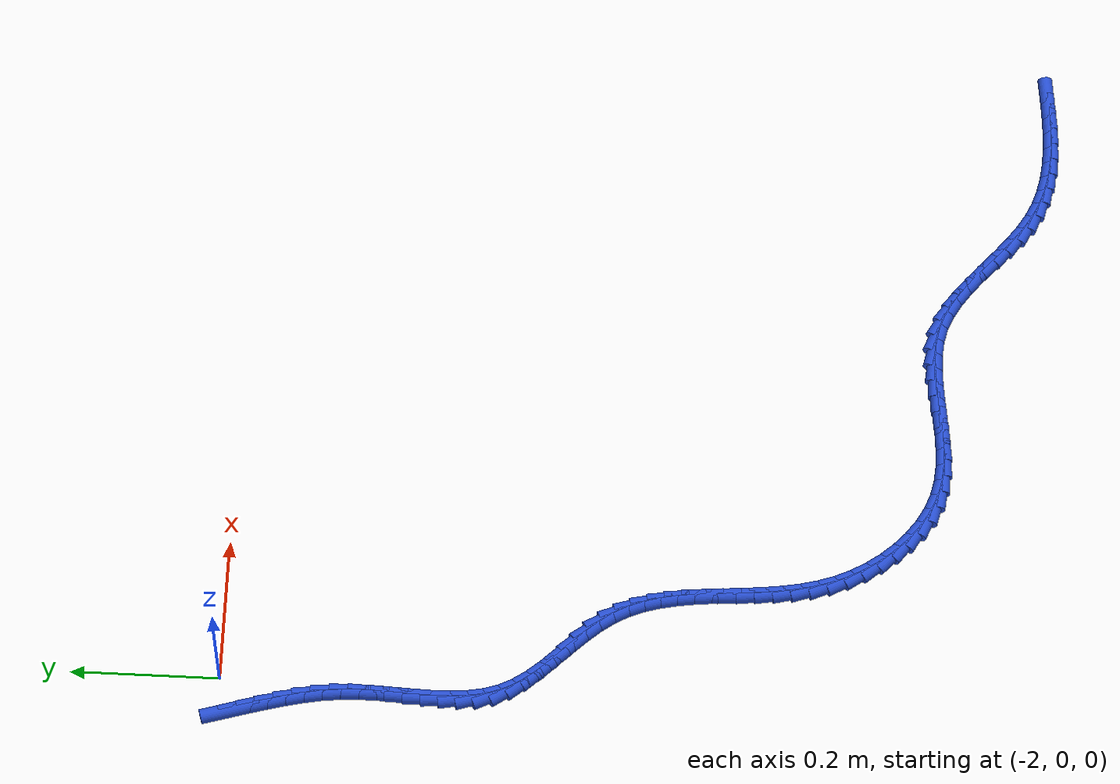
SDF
<sdf version="1.6">
 <world name="default">
  <model name="ground_plane">
   <static>1</static>
   <link name="link">
    <collision name="collision">
     <geometry><plane><normal>0 0 1</normal><size>100 100</size></plane></geometry>
     <surface><friction><ode><mu>100</mu><mu2>50</mu2></ode></friction></surface>
    </collision>
    <visual name="visual">
     <cast_shadows>0</cast_shadows>
     <geometry><plane><normal>0 0 1</normal><size>100 100</size></plane></geometry>
     <material>
      <script><uri>file://media/materials/scripts/gazebo.material</uri><name>Gazebo/WhiteGlow</name></script>
     </material>
    </visual>
   </link>
  </model>
  <model name="line">
   <link name="link_145">
    <pose>-2.0483830246148202 -0.017261488667078405 0.01 0 1.57 -1.2794194189198405</pose>
    <collision name="collision">
     <geometry><cylinder><radius>0.01</radius><length>0.08</length></cylinder></geometry>
    </collision>
    <visual name="visual">
     <material>
      <script><name>Gazebo/Blue</name><uri>file://media/materials/scripts/gazebo.material</uri></script>
     </material>
     <geometry><cylinder><radius>0.01</radius><length>0.08</length></cylinder></geometry>
    </visual>
   </link>
   <link name="link_146">
    <pose>-2.041304434966659 -0.04086363796386494 0.01 0 1.57 -1.2872877401476657</pose>
    <collision name="collision">
     <geometry><cylinder><radius>0.01</radius><length>0.08</length></cylinder></geometry>
    </collision>
    <visual name="visual">
     <material>
      <script><name>Gazebo/Blue</name><uri>file://media/materials/scripts/gazebo.material</uri></script>
     </material>
     <geometry><cylinder><radius>0.01</radius><length>0.08</length></cylinder></geometry>
    </visual>
   </link>
   <link name="link_147">
    <pose>-2.0343598893292323 -0.06469882463232929 0.01 0 1.57 -1.3083641450398615</pose>
    <collision name="collision">
     <geometry><cylinder><radius>0.01</radius><length>0.08</length></cylinder></geometry>
    </collision>
    <visual name="visual">
     <material>
      <script><name>Gazebo/Blue</name><uri>file://media/materials/scripts/gazebo.material</uri></script>
     </material>
     <geometry><cylinder><radius>0.01</radius><length>0.08</length></cylinder></geometry>
    </visual>
   </link>
   <link name="link_148">
    <pose>-2.027897480770272 -0.0887559585432331 0.01 0 1.57 -1.3427508767877594</pose>
    <collision name="collision">
     <geometry><cylinder><radius>0.01</radius><length>0.08</length></cylinder></geometry>
    </collision>
    <visual name="visual">
     <material>
      <script><name>Gazebo/Blue</name><uri>file://media/materials/scripts/gazebo.material</uri></script>
     </material>
     <geometry><cylinder><radius>0.01</radius><length>0.08</length></cylinder></geometry>
    </visual>
   </link>
   <link name="link_149">
    <pose>-2.0222653023575075 -0.11302394956733802 0.01 0 1.57 -1.3907382215481678</pose>
    <collision name="collision">
     <geometry><cylinder><radius>0.01</radius><length>0.08</length></cylinder></geometry>
    </collision>
    <visual name="visual">
     <material>
      <script><name>Gazebo/Blue</name><uri>file://media/materials/scripts/gazebo.material</uri></script>
     </material>
     <geometry><cylinder><radius>0.01</radius><length>0.08</length></cylinder></geometry>
    </visual>
   </link>
   <link name="link_150">
    <pose>-2.0178114471586692 -0.13749170757540569 0.01 0 1.57 -1.4526203434885763</pose>
    <collision name="collision">
     <geometry><cylinder><radius>0.01</radius><length>0.08</length></cylinder></geometry>
    </collision>
    <visual name="visual">
     <material>
      <script><name>Gazebo/Blue</name><uri>file://media/materials/scripts/gazebo.material</uri></script>
     </material>
     <geometry><cylinder><radius>0.01</radius><length>0.08</length></cylinder></geometry>
    </visual>
   </link>
   <link name="link_151">
    <pose>-2.014884008241487 -0.1621481424381977 0.01 0 1.57 -1.5223571945962018</pose>
    <collision name="collision">
     <geometry><cylinder><radius>0.01</radius><length>0.08</length></cylinder></geometry>
    </collision>
    <visual name="visual">
     <material>
      <script><name>Gazebo/Blue</name><uri>file://media/materials/scripts/gazebo.material</uri></script>
     </material>
     <geometry><cylinder><radius>0.01</radius><length>0.08</length></cylinder></geometry>
    </visual>
   </link>
   <link name="link_152">
    <pose>-2.0136812350703406 -0.1869593283669763 0.01 0 1.57 1.566384564438027</pose>
    <collision name="collision">
     <geometry><cylinder><radius>0.01</radius><length>0.08</length></cylinder></geometry>
    </collision>
    <visual name="visual">
     <material>
      <script><name>Gazebo/Blue</name><uri>file://media/materials/scripts/gazebo.material</uri></script>
     </material>
     <geometry><cylinder><radius>0.01</radius><length>0.08</length></cylinder></geometry>
    </visual>
   </link>
   <link name="link_153">
    <pose>-2.0137908193888605 -0.2117982926367096 0.01 0 1.57 1.536251741146123</pose>
    <collision name="collision">
     <geometry><cylinder><radius>0.01</radius><length>0.08</length></cylinder></geometry>
    </collision>
    <visual name="visual">
     <material>
      <script><name>Gazebo/Blue</name><uri>file://media/materials/scripts/gazebo.material</uri></script>
     </material>
     <geometry><cylinder><radius>0.01</radius><length>0.08</length></cylinder></geometry>
    </visual>
   </link>
   <link name="link_154">
    <pose>-2.014644965715542 -0.23651436679394935 0.01 0 1.57 1.5286442754670213</pose>
    <collision name="collision">
     <geometry><cylinder><radius>0.01</radius><length>0.08</length></cylinder></geometry>
    </collision>
    <visual name="visual">
     <material>
      <script><name>Gazebo/Blue</name><uri>file://media/materials/scripts/gazebo.material</uri></script>
     </material>
     <geometry><cylinder><radius>0.01</radius><length>0.08</length></cylinder></geometry>
    </visual>
   </link>
   <link name="link_155">
    <pose>-2.015675878533164 -0.2609568823798051 0.01 0 1.57 1.5441611040547807</pose>
    <collision name="collision">
     <geometry><cylinder><radius>0.01</radius><length>0.08</length></cylinder></geometry>
    </collision>
    <visual name="visual">
     <material>
      <script><name>Gazebo/Blue</name><uri>file://media/materials/scripts/gazebo.material</uri></script>
     </material>
     <geometry><cylinder><radius>0.01</radius><length>0.08</length></cylinder></geometry>
    </visual>
   </link>
   <link name="link_156">
    <pose>-2.016315762324507 -0.28497517093538643 0.01 0 1.57 -1.5571924480375676</pose>
    <collision name="collision">
     <geometry><cylinder><radius>0.01</radius><length>0.08</length></cylinder></geometry>
    </collision>
    <visual name="visual">
     <material>
      <script><name>Gazebo/Blue</name><uri>file://media/materials/scripts/gazebo.material</uri></script>
     </material>
     <geometry><cylinder><radius>0.01</radius><length>0.08</length></cylinder></geometry>
    </visual>
   </link>
   <link name="link_157">
    <pose>-2.01599682157235 -0.3084185640018028 0.01 0 1.57 -1.4897359065318712</pose>
    <collision name="collision">
     <geometry><cylinder><radius>0.01</radius><length>0.08</length></cylinder></geometry>
    </collision>
    <visual name="visual">
     <material>
      <script><name>Gazebo/Blue</name><uri>file://media/materials/scripts/gazebo.material</uri></script>
     </material>
     <geometry><cylinder><radius>0.01</radius><length>0.08</length></cylinder></geometry>
    </visual>
   </link>
   <link name="link_158">
    <pose>-2.0141512607594736 -0.33113639312016396 0.01 0 1.57 -1.3923269502467228</pose>
    <collision name="collision">
     <geometry><cylinder><radius>0.01</radius><length>0.08</length></cylinder></geometry>
    </collision>
    <visual name="visual">
     <material>
      <script><name>Gazebo/Blue</name><uri>file://media/materials/scripts/gazebo.material</uri></script>
     </material>
     <geometry><cylinder><radius>0.01</radius><length>0.08</length></cylinder></geometry>
    </visual>
   </link>
   <link name="link_159">
    <pose>-2.010211284368657 -0.35297798983157946 0.01 0 1.57 -1.2636455716927029</pose>
    <collision name="collision">
     <geometry><cylinder><radius>0.01</radius><length>0.08</length></cylinder></geometry>
    </collision>
    <visual name="visual">
     <material>
      <script><name>Gazebo/Blue</name><uri>file://media/materials/scripts/gazebo.material</uri></script>
     </material>
     <geometry><cylinder><radius>0.01</radius><length>0.08</length></cylinder></geometry>
    </visual>
   </link>
   <link name="link_160">
    <pose>-2.0036090968826796 -0.37379268567715873 0.01 0 1.57 -1.108068161740013</pose>
    <collision name="collision">
     <geometry><cylinder><radius>0.01</radius><length>0.08</length></cylinder></geometry>
    </collision>
    <visual name="visual">
     <material>
      <script><name>Gazebo/Blue</name><uri>file://media/materials/scripts/gazebo.material</uri></script>
     </material>
     <geometry><cylinder><radius>0.01</radius><length>0.08</length></cylinder></geometry>
    </visual>
   </link>
   <link name="link_161">
    <pose>-1.9938079625598664 -0.39344009531280705 0.01 0 1.57 -0.9652617583247524</pose>
    <collision name="collision">
     <geometry><cylinder><radius>0.01</radius><length>0.08</length></cylinder></geometry>
    </collision>
    <visual name="visual">
     <material>
      <script><name>Gazebo/Blue</name><uri>file://media/materials/scripts/gazebo.material</uri></script>
     </material>
     <geometry><cylinder><radius>0.01</radius><length>0.08</length></cylinder></geometry>
    </visual>
   </link>
   <link name="link_162">
    <pose>-1.9809548004513957 -0.412006174396328 0.01 0 1.57 -0.8673325138743191</pose>
    <collision name="collision">
     <geometry><cylinder><radius>0.01</radius><length>0.08</length></cylinder></geometry>
    </collision>
    <visual name="visual">
     <material>
      <script><name>Gazebo/Blue</name><uri>file://media/materials/scripts/gazebo.material</uri></script>
     </material>
     <geometry><cylinder><radius>0.01</radius><length>0.08</length></cylinder></geometry>
    </visual>
   </link>
   <link name="link_163">
    <pose>-1.965863541082562 -0.4297977094008816 0.01 0 1.57 -0.8103854601641428</pose>
    <collision name="collision">
     <geometry><cylinder><radius>0.01</radius><length>0.08</length></cylinder></geometry>
    </collision>
    <visual name="visual">
     <material>
      <script><name>Gazebo/Blue</name><uri>file://media/materials/scripts/gazebo.material</uri></script>
     </material>
     <geometry><cylinder><radius>0.01</radius><length>0.08</length></cylinder></geometry>
    </visual>
   </link>
   <link name="link_164">
    <pose>-1.949375845456619 -0.44713066766726817 0.01 0 1.57 -0.7897179089075105</pose>
    <collision name="collision">
     <geometry><cylinder><radius>0.01</radius><length>0.08</length></cylinder></geometry>
    </collision>
    <visual name="visual">
     <material>
      <script><name>Gazebo/Blue</name><uri>file://media/materials/scripts/gazebo.material</uri></script>
     </material>
     <geometry><cylinder><radius>0.01</radius><length>0.08</length></cylinder></geometry>
    </visual>
   </link>
   <link name="link_165">
    <pose>-1.9323333745768185 -0.46432101653628755 0.01 0 1.57 -0.8032196733111899</pose>
    <collision name="collision">
     <geometry><cylinder><radius>0.01</radius><length>0.08</length></cylinder></geometry>
    </collision>
    <visual name="visual">
     <material>
      <script><name>Gazebo/Blue</name><uri>file://media/materials/scripts/gazebo.material</uri></script>
     </material>
     <geometry><cylinder><radius>0.01</radius><length>0.08</length></cylinder></geometry>
    </visual>
   </link>
   <link name="link_166">
    <pose>-1.9155777894464143 -0.4816847233487398 0.01 0 1.57 -0.851787580436012</pose>
    <collision name="collision">
     <geometry><cylinder><radius>0.01</radius><length>0.08</length></cylinder></geometry>
    </collision>
    <visual name="visual">
     <material>
      <script><name>Gazebo/Blue</name><uri>file://media/materials/scripts/gazebo.material</uri></script>
     </material>
     <geometry><cylinder><radius>0.01</radius><length>0.08</length></cylinder></geometry>
    </visual>
   </link>
   <link name="link_167">
    <pose>-1.8999507510686597 -0.49953775544542484 0.01 0 1.57 -0.9389521941829061</pose>
    <collision name="collision">
     <geometry><cylinder><radius>0.01</radius><length>0.08</length></cylinder></geometry>
    </collision>
    <visual name="visual">
     <material>
      <script><name>Gazebo/Blue</name><uri>file://media/materials/scripts/gazebo.material</uri></script>
     </material>
     <geometry><cylinder><radius>0.01</radius><length>0.08</length></cylinder></geometry>
    </visual>
   </link>
   <link name="link_168">
    <pose>-1.8862939204468079 -0.5181960801671427 0.01 0 1.57 -1.0619204006826954</pose>
    <collision name="collision">
     <geometry><cylinder><radius>0.01</radius><length>0.08</length></cylinder></geometry>
    </collision>
    <visual name="visual">
     <material>
      <script><name>Gazebo/Blue</name><uri>file://media/materials/scripts/gazebo.material</uri></script>
     </material>
     <geometry><cylinder><radius>0.01</radius><length>0.08</length></cylinder></geometry>
    </visual>
   </link>
   <link name="link_169">
    <pose>-1.8752911156371 -0.5379184730961186 0.01 0 1.57 -1.1823713898079344</pose>
    <collision name="collision">
     <geometry><cylinder><radius>0.01</radius><length>0.08</length></cylinder></geometry>
    </collision>
    <visual name="visual">
     <material>
      <script><name>Gazebo/Blue</name><uri>file://media/materials/scripts/gazebo.material</uri></script>
     </material>
     <geometry><cylinder><radius>0.01</radius><length>0.08</length></cylinder></geometry>
    </visual>
   </link>
   <link name="link_170">
    <pose>-1.8668013818734372 -0.5586648671419954 0.01 0 1.57 -1.2837471273298435</pose>
    <collision name="collision">
     <geometry><cylinder><radius>0.01</radius><length>0.08</length></cylinder></geometry>
    </collision>
    <visual name="visual">
     <material>
      <script><name>Gazebo/Blue</name><uri>file://media/materials/scripts/gazebo.material</uri></script>
     </material>
     <geometry><cylinder><radius>0.01</radius><length>0.08</length></cylinder></geometry>
    </visual>
   </link>
   <link name="link_171">
    <pose>-1.86041526402421 -0.580297908586331 0.01 0 1.57 -1.3641540553726468</pose>
    <collision name="collision">
     <geometry><cylinder><radius>0.01</radius><length>0.08</length></cylinder></geometry>
    </collision>
    <visual name="visual">
     <material>
      <script><name>Gazebo/Blue</name><uri>file://media/materials/scripts/gazebo.material</uri></script>
     </material>
     <geometry><cylinder><radius>0.01</radius><length>0.08</length></cylinder></geometry>
    </visual>
   </link>
   <link name="link_172">
    <pose>-1.8557231615749592 -0.6026801910336347 0.01 0 1.57 -1.4236689605660042</pose>
    <collision name="collision">
     <geometry><cylinder><radius>0.01</radius><length>0.08</length></cylinder></geometry>
    </collision>
    <visual name="visual">
     <material>
      <script><name>Gazebo/Blue</name><uri>file://media/materials/scripts/gazebo.material</uri></script>
     </material>
     <geometry><cylinder><radius>0.01</radius><length>0.08</length></cylinder></geometry>
    </visual>
   </link>
   <link name="link_173">
    <pose>-1.8523154740112273 -0.6256743080884156 0.01 0 1.57 -1.4632861699599455</pose>
    <collision name="collision">
     <geometry><cylinder><radius>0.01</radius><length>0.08</length></cylinder></geometry>
    </collision>
    <visual name="visual">
     <material>
      <script><name>Gazebo/Blue</name><uri>file://media/materials/scripts/gazebo.material</uri></script>
     </material>
     <geometry><cylinder><radius>0.01</radius><length>0.08</length></cylinder></geometry>
    </visual>
   </link>
   <link name="link_174">
    <pose>-1.8497826008185565 -0.6491428533551833 0.01 0 1.57 -1.484157631199444</pose>
    <collision name="collision">
     <geometry><cylinder><radius>0.01</radius><length>0.08</length></cylinder></geometry>
    </collision>
    <visual name="visual">
     <material>
      <script><name>Gazebo/Blue</name><uri>file://media/materials/scripts/gazebo.material</uri></script>
     </material>
     <geometry><cylinder><radius>0.01</radius><length>0.08</length></cylinder></geometry>
    </visual>
   </link>
   <link name="link_175">
    <pose>-1.8477149414824878 -0.6729484204384467 0.01 0 1.57 -1.4871746337183145</pose>
    <collision name="collision">
     <geometry><cylinder><radius>0.01</radius><length>0.08</length></cylinder></geometry>
    </collision>
    <visual name="visual">
     <material>
      <script><name>Gazebo/Blue</name><uri>file://media/materials/scripts/gazebo.material</uri></script>
     </material>
     <geometry><cylinder><radius>0.01</radius><length>0.08</length></cylinder></geometry>
    </visual>
   </link>
   <link name="link_176">
    <pose>-1.8457028954885635 -0.6969536029427155 0.01 0 1.57 -1.4728025408816345</pose>
    <collision name="collision">
     <geometry><cylinder><radius>0.01</radius><length>0.08</length></cylinder></geometry>
    </collision>
    <visual name="visual">
     <material>
      <script><name>Gazebo/Blue</name><uri>file://media/materials/scripts/gazebo.material</uri></script>
     </material>
     <geometry><cylinder><radius>0.01</radius><length>0.08</length></cylinder></geometry>
    </visual>
   </link>
   <link name="link_177">
    <pose>-1.8433368623223254 -0.7210209944724983 0.01 0 1.57 -1.4410854199637684</pose>
    <collision name="collision">
     <geometry><cylinder><radius>0.01</radius><length>0.08</length></cylinder></geometry>
    </collision>
    <visual name="visual">
     <material>
      <script><name>Gazebo/Blue</name><uri>file://media/materials/scripts/gazebo.material</uri></script>
     </material>
     <geometry><cylinder><radius>0.01</radius><length>0.08</length></cylinder></geometry>
    </visual>
   </link>
   <link name="link_178">
    <pose>-1.8402072414693156 -0.7450131886323051 0.01 0 1.57 -1.3917877459371715</pose>
    <collision name="collision">
     <geometry><cylinder><radius>0.01</radius><length>0.08</length></cylinder></geometry>
    </collision>
    <visual name="visual">
     <material>
      <script><name>Gazebo/Blue</name><uri>file://media/materials/scripts/gazebo.material</uri></script>
     </material>
     <geometry><cylinder><radius>0.01</radius><length>0.08</length></cylinder></geometry>
    </visual>
   </link>
   <link name="link_179">
    <pose>-1.8359044324150757 -0.7687927790266448 0.01 0 1.57 -1.3246850696941987</pose>
    <collision name="collision">
     <geometry><cylinder><radius>0.01</radius><length>0.08</length></cylinder></geometry>
    </collision>
    <visual name="visual">
     <material>
      <script><name>Gazebo/Blue</name><uri>file://media/materials/scripts/gazebo.material</uri></script>
     </material>
     <geometry><cylinder><radius>0.01</radius><length>0.08</length></cylinder></geometry>
    </visual>
   </link>
   <link name="link_180">
    <pose>-1.8300188346451476 -0.7922223592600268 0.01 0 1.57 -1.2400270216746092</pose>
    <collision name="collision">
     <geometry><cylinder><radius>0.01</radius><length>0.08</length></cylinder></geometry>
    </collision>
    <visual name="visual">
     <material>
      <script><name>Gazebo/Blue</name><uri>file://media/materials/scripts/gazebo.material</uri></script>
     </material>
     <geometry><cylinder><radius>0.01</radius><length>0.08</length></cylinder></geometry>
    </visual>
   </link>
   <link name="link_181">
    <pose>-1.8221408476450736 -0.8151645229369604 0.01 0 1.57 -1.141470718474249</pose>
    <collision name="collision">
     <geometry><cylinder><radius>0.01</radius><length>0.08</length></cylinder></geometry>
    </collision>
    <visual name="visual">
     <material>
      <script><name>Gazebo/Blue</name><uri>file://media/materials/scripts/gazebo.material</uri></script>
     </material>
     <geometry><cylinder><radius>0.01</radius><length>0.08</length></cylinder></geometry>
    </visual>
   </link>
   <link name="link_182">
    <pose>-1.8119356281481505 -0.837456150749178 0.01 0 1.57 -1.0421509717335677</pose>
    <collision name="collision">
     <geometry><cylinder><radius>0.01</radius><length>0.08</length></cylinder></geometry>
    </collision>
    <visual name="visual">
     <material>
      <script><name>Gazebo/Blue</name><uri>file://media/materials/scripts/gazebo.material</uri></script>
     </material>
     <geometry><cylinder><radius>0.01</radius><length>0.08</length></cylinder></geometry>
    </visual>
   </link>
   <link name="link_183">
    <pose>-1.7994713348166964 -0.8587955100263557 0.01 0 1.57 -0.9437550691687527</pose>
    <collision name="collision">
     <geometry><cylinder><radius>0.01</radius><length>0.08</length></cylinder></geometry>
    </collision>
    <visual name="visual">
     <material>
      <script><name>Gazebo/Blue</name><uri>file://media/materials/scripts/gazebo.material</uri></script>
     </material>
     <geometry><cylinder><radius>0.01</radius><length>0.08</length></cylinder></geometry>
    </visual>
   </link>
   <link name="link_184">
    <pose>-1.7849513225507536 -0.878834367067528 0.01 0 1.57 -0.84337891502225</pose>
    <collision name="collision">
     <geometry><cylinder><radius>0.01</radius><length>0.08</length></cylinder></geometry>
    </collision>
    <visual name="visual">
     <material>
      <script><name>Gazebo/Blue</name><uri>file://media/materials/scripts/gazebo.material</uri></script>
     </material>
     <geometry><cylinder><radius>0.01</radius><length>0.08</length></cylinder></geometry>
    </visual>
   </link>
   <link name="link_185">
    <pose>-1.7685790451189127 -0.8972244541656891 0.01 0 1.57 -0.7381261239198352</pose>
    <collision name="collision">
     <geometry><cylinder><radius>0.01</radius><length>0.08</length></cylinder></geometry>
    </collision>
    <visual name="visual">
     <material>
      <script><name>Gazebo/Blue</name><uri>file://media/materials/scripts/gazebo.material</uri></script>
     </material>
     <geometry><cylinder><radius>0.01</radius><length>0.08</length></cylinder></geometry>
    </visual>
   </link>
   <link name="link_186">
    <pose>-1.7505579562897624 -0.9136175036138293 0.01 0 1.57 -0.6251015432518439</pose>
    <collision name="collision">
     <geometry><cylinder><radius>0.01</radius><length>0.08</length></cylinder></geometry>
    </collision>
    <visual name="visual">
     <material>
      <script><name>Gazebo/Blue</name><uri>file://media/materials/scripts/gazebo.material</uri></script>
     </material>
     <geometry><cylinder><radius>0.01</radius><length>0.08</length></cylinder></geometry>
    </visual>
   </link>
   <link name="link_187">
    <pose>-1.7310915098318915 -0.927665247704941 0.01 0 1.57 -0.5015290181594673</pose>
    <collision name="collision">
     <geometry><cylinder><radius>0.01</radius><length>0.08</length></cylinder></geometry>
    </collision>
    <visual name="visual">
     <material>
      <script><name>Gazebo/Blue</name><uri>file://media/materials/scripts/gazebo.material</uri></script>
     </material>
     <geometry><cylinder><radius>0.01</radius><length>0.08</length></cylinder></geometry>
    </visual>
   </link>
   <link name="link_188">
    <pose>-1.7103831595138905 -0.9390194187320158 0.01 0 1.57 -0.365096220618191</pose>
    <collision name="collision">
     <geometry><cylinder><radius>0.01</radius><length>0.08</length></cylinder></geometry>
    </collision>
    <visual name="visual">
     <material>
      <script><name>Gazebo/Blue</name><uri>file://media/materials/scripts/gazebo.material</uri></script>
     </material>
     <geometry><cylinder><radius>0.01</radius><length>0.08</length></cylinder></geometry>
    </visual>
   </link>
   <link name="link_189">
    <pose>-1.688636359104348 -0.9473317489880456 0.01 0 1.57 -0.21725664152057456</pose>
    <collision name="collision">
     <geometry><cylinder><radius>0.01</radius><length>0.08</length></cylinder></geometry>
    </collision>
    <visual name="visual">
     <material>
      <script><name>Gazebo/Blue</name><uri>file://media/materials/scripts/gazebo.material</uri></script>
     </material>
     <geometry><cylinder><radius>0.01</radius><length>0.08</length></cylinder></geometry>
    </visual>
   </link>
   <link name="link_190">
    <pose>-1.6660523214063452 -0.9523169638882186 0.01 0 1.57 -0.08493586822836578</pose>
    <collision name="collision">
     <geometry><cylinder><radius>0.01</radius><length>0.08</length></cylinder></geometry>
    </collision>
    <visual name="visual">
     <material>
      <script><name>Gazebo/Blue</name><uri>file://media/materials/scripts/gazebo.material</uri></script>
     </material>
     <geometry><cylinder><radius>0.01</radius><length>0.08</length></cylinder></geometry>
    </visual>
   </link>
   <link name="link_191">
    <pose>-1.6428107015225608 -0.9542957717826527 0.01 0 1.57 0.015530677542996092</pose>
    <collision name="collision">
     <geometry><cylinder><radius>0.01</radius><length>0.08</length></cylinder></geometry>
    </collision>
    <visual name="visual">
     <material>
      <script><name>Gazebo/Blue</name><uri>file://media/materials/scripts/gazebo.material</uri></script>
     </material>
     <geometry><cylinder><radius>0.01</radius><length>0.08</length></cylinder></geometry>
    </visual>
   </link>
   <link name="link_192">
    <pose>-1.6190791198410293 -0.9539271746040429 0.01 0 1.57 0.08515618906958049</pose>
    <collision name="collision">
     <geometry><cylinder><radius>0.01</radius><length>0.08</length></cylinder></geometry>
    </collision>
    <visual name="visual">
     <material>
      <script><name>Gazebo/Blue</name><uri>file://media/materials/scripts/gazebo.material</uri></script>
     </material>
     <geometry><cylinder><radius>0.01</radius><length>0.08</length></cylinder></geometry>
    </visual>
   </link>
   <link name="link_193">
    <pose>-1.5950250657252465 -0.951873857360397 0.01 0 1.57 0.12635644510255367</pose>
    <collision name="collision">
     <geometry><cylinder><radius>0.01</radius><length>0.08</length></cylinder></geometry>
    </collision>
    <visual name="visual">
     <material>
      <script><name>Gazebo/Blue</name><uri>file://media/materials/scripts/gazebo.material</uri></script>
     </material>
     <geometry><cylinder><radius>0.01</radius><length>0.08</length></cylinder></geometry>
    </visual>
   </link>
   <link name="link_194">
    <pose>-1.5708160285387092 -0.9487985050597257 0.01 0 1.57 0.14100813594548883</pose>
    <collision name="collision">
     <geometry><cylinder><radius>0.01</radius><length>0.08</length></cylinder></geometry>
    </collision>
    <visual name="visual">
     <material>
      <script><name>Gazebo/Blue</name><uri>file://media/materials/scripts/gazebo.material</uri></script>
     </material>
     <geometry><cylinder><radius>0.01</radius><length>0.08</length></cylinder></geometry>
    </visual>
   </link>
   <link name="link_195">
    <pose>-1.5466194976449135 -0.9453638027100368 0.01 0 1.57 0.1296524178802789</pose>
    <collision name="collision">
     <geometry><cylinder><radius>0.01</radius><length>0.08</length></cylinder></geometry>
    </collision>
    <visual name="visual">
     <material>
      <script><name>Gazebo/Blue</name><uri>file://media/materials/scripts/gazebo.material</uri></script>
     </material>
     <geometry><cylinder><radius>0.01</radius><length>0.08</length></cylinder></geometry>
    </visual>
   </link>
   <link name="link_196">
    <pose>-1.5226029624073554 -0.9422324353193403 0.01 0 1.57 0.09123039090032106</pose>
    <collision name="collision">
     <geometry><cylinder><radius>0.01</radius><length>0.08</length></cylinder></geometry>
    </collision>
    <visual name="visual">
     <material>
      <script><name>Gazebo/Blue</name><uri>file://media/materials/scripts/gazebo.material</uri></script>
     </material>
     <geometry><cylinder><radius>0.01</radius><length>0.08</length></cylinder></geometry>
    </visual>
   </link>
   <link name="link_197">
    <pose>-1.498933912189531 -0.9400670878956447 0.01 0 1.57 0.02317287000863003</pose>
    <collision name="collision">
     <geometry><cylinder><radius>0.01</radius><length>0.08</length></cylinder></geometry>
    </collision>
    <visual name="visual">
     <material>
      <script><name>Gazebo/Blue</name><uri>file://media/materials/scripts/gazebo.material</uri></script>
     </material>
     <geometry><cylinder><radius>0.01</radius><length>0.08</length></cylinder></geometry>
    </visual>
   </link>
   <link name="link_198">
    <pose>-1.475779836354937 -0.9395304454469595 0.01 0 1.57 -0.07792916330182968</pose>
    <collision name="collision">
     <geometry><cylinder><radius>0.01</radius><length>0.08</length></cylinder></geometry>
    </collision>
    <visual name="visual">
     <material>
      <script><name>Gazebo/Blue</name><uri>file://media/materials/scripts/gazebo.material</uri></script>
     </material>
     <geometry><cylinder><radius>0.01</radius><length>0.08</length></cylinder></geometry>
    </visual>
   </link>
   <link name="link_199">
    <pose>-1.453308224267069 -0.9412851929812935 0.01 0 1.57 -0.2144343516047105</pose>
    <collision name="collision">
     <geometry><cylinder><radius>0.01</radius><length>0.08</length></cylinder></geometry>
    </collision>
    <visual name="visual">
     <material>
      <script><name>Gazebo/Blue</name><uri>file://media/materials/scripts/gazebo.material</uri></script>
     </material>
     <geometry><cylinder><radius>0.01</radius><length>0.08</length></cylinder></geometry>
    </visual>
   </link>
   <link name="link_200">
    <pose>-1.4316865652774577 -0.9459940154624868 0.01 0 1.57 -0.37336437232141395</pose>
    <collision name="collision">
     <geometry><cylinder><radius>0.01</radius><length>0.08</length></cylinder></geometry>
    </collision>
    <visual name="visual">
     <material>
      <script><name>Gazebo/Blue</name><uri>file://media/materials/scripts/gazebo.material</uri></script>
     </material>
     <geometry><cylinder><radius>0.01</radius><length>0.08</length></cylinder></geometry>
    </visual>
   </link>
   <link name="link_201">
    <pose>-1.411020111837448 -0.9540898657853868 0.01 0 1.57 -0.5065066752901483</pose>
    <collision name="collision">
     <geometry><cylinder><radius>0.01</radius><length>0.08</length></cylinder></geometry>
    </collision>
    <visual name="visual">
     <material>
      <script><name>Gazebo/Blue</name><uri>file://media/materials/scripts/gazebo.material</uri></script>
     </material>
     <geometry><cylinder><radius>0.01</radius><length>0.08</length></cylinder></geometry>
    </visual>
   </link>
   <link name="link_202">
    <pose>-1.3911694666156356 -0.9651026328972417 0.01 0 1.57 -0.6027847969423545</pose>
    <collision name="collision">
     <geometry><cylinder><radius>0.01</radius><length>0.08</length></cylinder></geometry>
    </collision>
    <visual name="visual">
     <material>
      <script><name>Gazebo/Blue</name><uri>file://media/materials/scripts/gazebo.material</uri></script>
     </material>
     <geometry><cylinder><radius>0.01</radius><length>0.08</length></cylinder></geometry>
    </visual>
   </link>
   <link name="link_203">
    <pose>-1.3719351258039212 -0.978340337605815 0.01 0 1.57 -0.6654910787051266</pose>
    <collision name="collision">
     <geometry><cylinder><radius>0.01</radius><length>0.08</length></cylinder></geometry>
    </collision>
    <visual name="visual">
     <material>
      <script><name>Gazebo/Blue</name><uri>file://media/materials/scripts/gazebo.material</uri></script>
     </material>
     <geometry><cylinder><radius>0.01</radius><length>0.08</length></cylinder></geometry>
    </visual>
   </link>
   <link name="link_204">
    <pose>-1.3531175855942044 -0.9931110007188689 0.01 0 1.57 -0.6982637178211988</pose>
    <collision name="collision">
     <geometry><cylinder><radius>0.01</radius><length>0.08</length></cylinder></geometry>
    </collision>
    <visual name="visual">
     <material>
      <script><name>Gazebo/Blue</name><uri>file://media/materials/scripts/gazebo.material</uri></script>
     </material>
     <geometry><cylinder><radius>0.01</radius><length>0.08</length></cylinder></geometry>
    </visual>
   </link>
   <link name="link_205">
    <pose>-1.3345173421783854 -1.0087226430441667 0.01 0 1.57 -0.7034170915179275</pose>
    <collision name="collision">
     <geometry><cylinder><radius>0.01</radius><length>0.08</length></cylinder></geometry>
    </collision>
    <visual name="visual">
     <material>
      <script><name>Gazebo/Blue</name><uri>file://media/materials/scripts/gazebo.material</uri></script>
     </material>
     <geometry><cylinder><radius>0.01</radius><length>0.08</length></cylinder></geometry>
    </visual>
   </link>
   <link name="link_206">
    <pose>-1.3159348917483635 -1.0244832853894714 0.01 0 1.57 -0.6814100600129158</pose>
    <collision name="collision">
     <geometry><cylinder><radius>0.01</radius><length>0.08</length></cylinder></geometry>
    </collision>
    <visual name="visual">
     <material>
      <script><name>Gazebo/Blue</name><uri>file://media/materials/scripts/gazebo.material</uri></script>
     </material>
     <geometry><cylinder><radius>0.01</radius><length>0.08</length></cylinder></geometry>
    </visual>
   </link>
   <link name="link_207">
    <pose>-1.2971707304960385 -1.0397009485625457 0.01 0 1.57 -0.6308019411165191</pose>
    <collision name="collision">
     <geometry><cylinder><radius>0.01</radius><length>0.08</length></cylinder></geometry>
    </collision>
    <visual name="visual">
     <material>
      <script><name>Gazebo/Blue</name><uri>file://media/materials/scripts/gazebo.material</uri></script>
     </material>
     <geometry><cylinder><radius>0.01</radius><length>0.08</length></cylinder></geometry>
    </visual>
   </link>
   <link name="link_208">
    <pose>-1.2780253546133102 -1.0536836533711529 0.01 0 1.57 -0.5485837956853838</pose>
    <collision name="collision">
     <geometry><cylinder><radius>0.01</radius><length>0.08</length></cylinder></geometry>
    </collision>
    <visual name="visual">
     <material>
      <script><name>Gazebo/Blue</name><uri>file://media/materials/scripts/gazebo.material</uri></script>
     </material>
     <geometry><cylinder><radius>0.01</radius><length>0.08</length></cylinder></geometry>
    </visual>
   </link>
   <link name="link_209">
    <pose>-1.258299260292078 -1.0657394206230555 0.01 0 1.57 -0.43441724761310924</pose>
    <collision name="collision">
     <geometry><cylinder><radius>0.01</radius><length>0.08</length></cylinder></geometry>
    </collision>
    <visual name="visual">
     <material>
      <script><name>Gazebo/Blue</name><uri>file://media/materials/scripts/gazebo.material</uri></script>
     </material>
     <geometry><cylinder><radius>0.01</radius><length>0.08</length></cylinder></geometry>
    </visual>
   </link>
   <link name="link_210">
    <pose>-1.2378124468372207 -1.0752448565365555 0.01 0 1.57 -0.31519887916921646</pose>
    <collision name="collision">
     <geometry><cylinder><radius>0.01</radius><length>0.08</length></cylinder></geometry>
    </collision>
    <visual name="visual">
     <material>
      <script><name>Gazebo/Blue</name><uri>file://media/materials/scripts/gazebo.material</uri></script>
     </material>
     <geometry><cylinder><radius>0.01</radius><length>0.08</length></cylinder></geometry>
    </visual>
   </link>
   <link name="link_211">
    <pose>-1.2165554061276946 -1.0821761281898035 0.01 0 1.57 -0.20846989071600386</pose>
    <collision name="collision">
     <geometry><cylinder><radius>0.01</radius><length>0.08</length></cylinder></geometry>
    </collision>
    <visual name="visual">
     <material>
      <script><name>Gazebo/Blue</name><uri>file://media/materials/scripts/gazebo.material</uri></script>
     </material>
     <geometry><cylinder><radius>0.01</radius><length>0.08</length></cylinder></geometry>
    </visual>
   </link>
   <link name="link_212">
    <pose>-1.1946067316338047 -1.0868192241657693 0.01 0 1.57 -0.11663961732433858</pose>
    <collision name="collision">
     <geometry><cylinder><radius>0.01</radius><length>0.08</length></cylinder></geometry>
    </collision>
    <visual name="visual">
     <material>
      <script><name>Gazebo/Blue</name><uri>file://media/materials/scripts/gazebo.material</uri></script>
     </material>
     <geometry><cylinder><radius>0.01</radius><length>0.08</length></cylinder></geometry>
    </visual>
   </link>
   <link name="link_213">
    <pose>-1.1720457544229574 -1.0894627269102715 0.01 0 1.57 -0.04035627175792966</pose>
    <collision name="collision">
     <geometry><cylinder><radius>0.01</radius><length>0.08</length></cylinder></geometry>
    </collision>
    <visual name="visual">
     <material>
      <script><name>Gazebo/Blue</name><uri>file://media/materials/scripts/gazebo.material</uri></script>
     </material>
     <geometry><cylinder><radius>0.01</radius><length>0.08</length></cylinder></geometry>
    </visual>
   </link>
   <link name="link_214">
    <pose>-1.1489518055625623 -1.0903952188691306 0.01 0 1.57 0.020803220766160837</pose>
    <collision name="collision">
     <geometry><cylinder><radius>0.01</radius><length>0.08</length></cylinder></geometry>
    </collision>
    <visual name="visual">
     <material>
      <script><name>Gazebo/Blue</name><uri>file://media/materials/scripts/gazebo.material</uri></script>
     </material>
     <geometry><cylinder><radius>0.01</radius><length>0.08</length></cylinder></geometry>
    </visual>
   </link>
   <link name="link_215">
    <pose>-1.1254042161200266 -1.0899052824881659 0.01 0 1.57 0.06777452310987792</pose>
    <collision name="collision">
     <geometry><cylinder><radius>0.01</radius><length>0.08</length></cylinder></geometry>
    </collision>
    <visual name="visual">
     <material>
      <script><name>Gazebo/Blue</name><uri>file://media/materials/scripts/gazebo.material</uri></script>
     </material>
     <geometry><cylinder><radius>0.01</radius><length>0.08</length></cylinder></geometry>
    </visual>
   </link>
   <link name="link_216">
    <pose>-1.1014823171627595 -1.0882815002131965 0.01 0 1.57 0.10160449068583222</pose>
    <collision name="collision">
     <geometry><cylinder><radius>0.01</radius><length>0.08</length></cylinder></geometry>
    </collision>
    <visual name="visual">
     <material>
      <script><name>Gazebo/Blue</name><uri>file://media/materials/scripts/gazebo.material</uri></script>
     </material>
     <geometry><cylinder><radius>0.01</radius><length>0.08</length></cylinder></geometry>
    </visual>
   </link>
   <link name="link_217">
    <pose>-1.0772654397581671 -1.0858124544900427 0.01 0 1.57 0.12321279324577535</pose>
    <collision name="collision">
     <geometry><cylinder><radius>0.01</radius><length>0.08</length></cylinder></geometry>
    </collision>
    <visual name="visual">
     <material>
      <script><name>Gazebo/Blue</name><uri>file://media/materials/scripts/gazebo.material</uri></script>
     </material>
     <geometry><cylinder><radius>0.01</radius><length>0.08</length></cylinder></geometry>
    </visual>
   </link>
  </model>
 </world>
</sdf>
